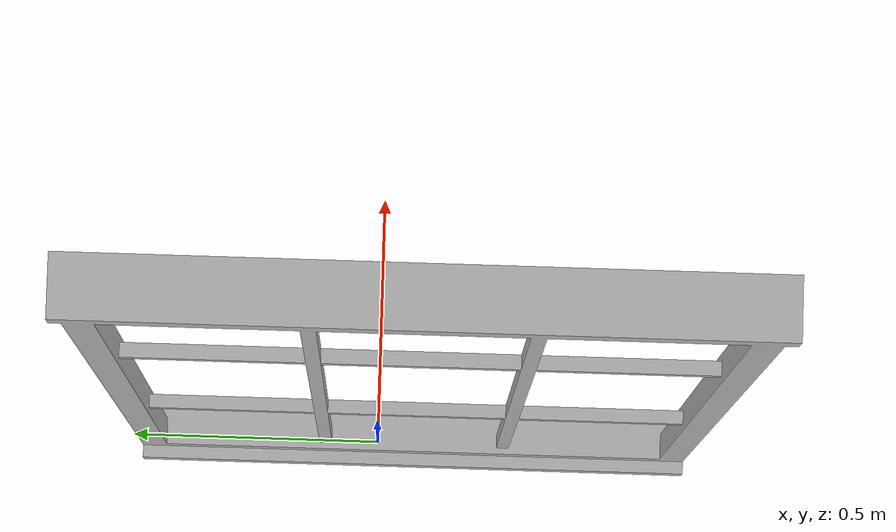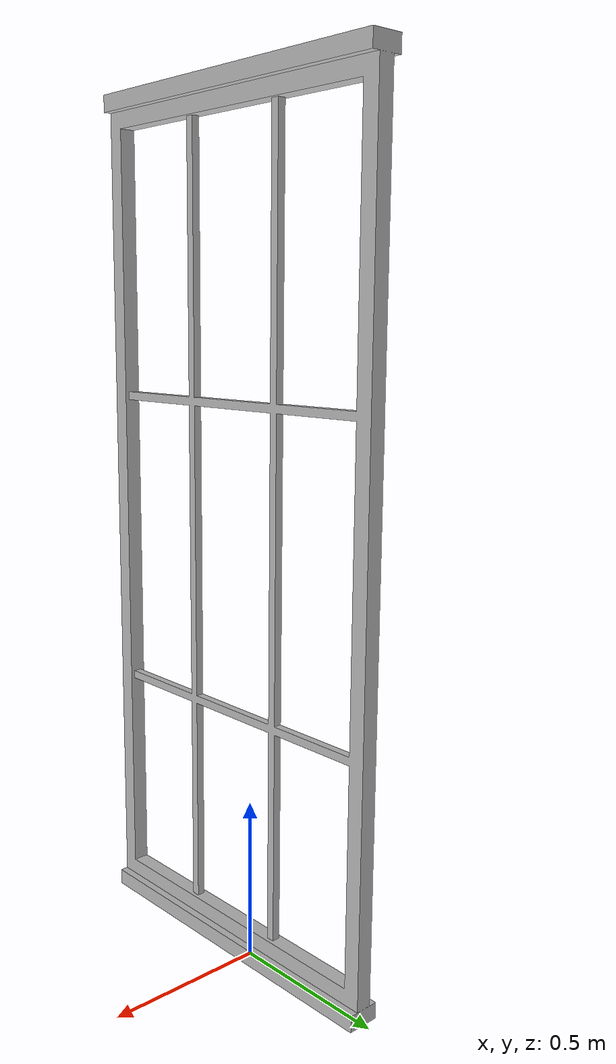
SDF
<?xml version="1.0"?>
<sdf version="1.6">
  <model name="aws_robomaker_residential_FoldingDoor_02">
    <link name="link_FoldingDoor_02">
      <inertial>
        <mass>1</mass>
        <inertia>
          <ixx>0.01</ixx>
          <iyy>0.01</iyy>
          <izz>0.01</izz>
          <ixy>0.0</ixy>
          <ixz>0.0</ixz>
          <iyz>0.0</iyz>
        </inertia>
      </inertial>
      <collision name="collision">
        <geometry>
          <mesh>
            <uri>model://aws_robomaker_residential_FoldingDoor_02/meshes/aws_FoldingDoor_02_collision.DAE</uri>
            <scale>1 1 1</scale>
          </mesh>
        </geometry>
      </collision>
      <visual name="visual">
        <geometry>
          <mesh>
            <uri>model://aws_robomaker_residential_FoldingDoor_02/meshes/aws_FoldingDoor_02_visual.DAE</uri>
          </mesh>
        </geometry>
        <meta>
          <layer> 2 </layer>
        </meta>
      </visual>
    </link>
    <static>1</static>
  </model>
</sdf>
